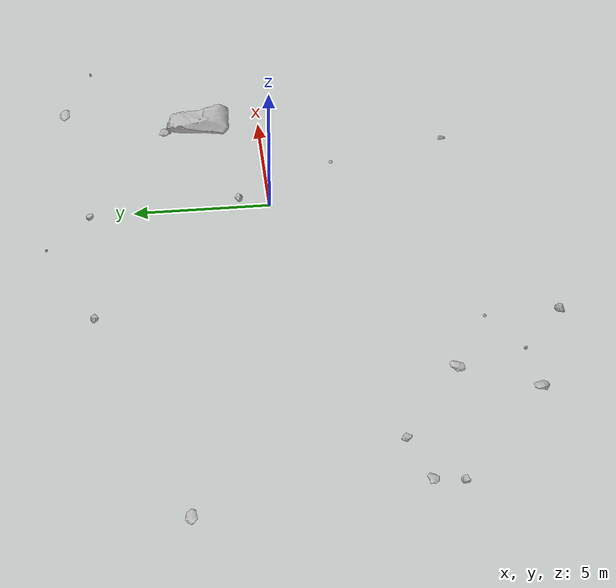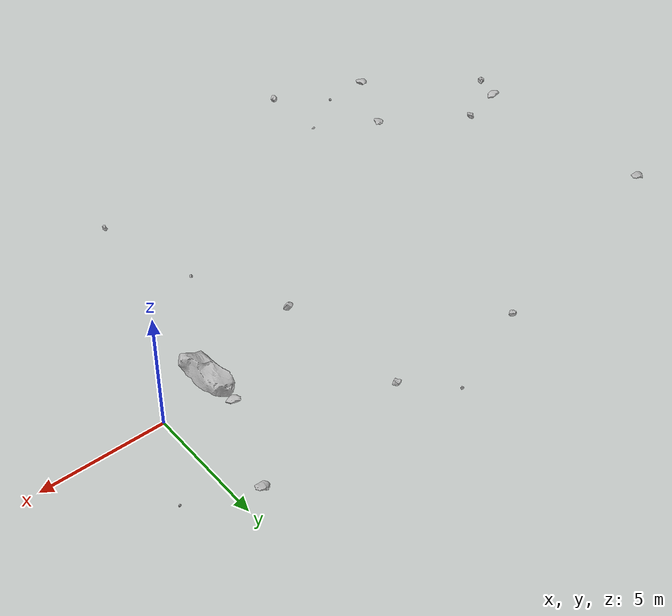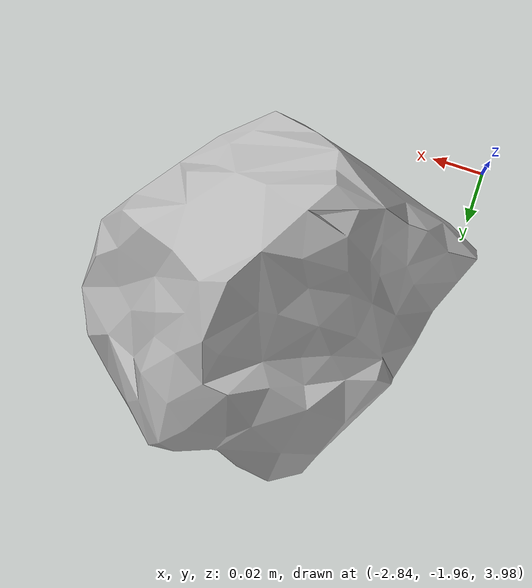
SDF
<sdf version="1.7">
 <world name="marsyard">
  <gravity>0 0 -9.81</gravity>
  <physics name="dart_physics" type="ignored">
   <max_step_size>0.003</max_step_size>
   <real_time_update_rate>333</real_time_update_rate>
   <real_time_factor>1.0</real_time_factor>
  </physics>
  <plugin filename="ignition-gazebo-physics-system" name="ignition::gazebo::systems::Physics"/>
  <plugin filename="ignition-gazebo-user-commands-system" name="ignition::gazebo::systems::UserCommands"/>
  <plugin filename="ignition-gazebo-scene-broadcaster-system" name="ignition::gazebo::systems::SceneBroadcaster"/>
  <plugin filename="ignition-gazebo-contact-system" name="ignition::gazebo::systems::Contact"/>
  <scene>
   <ambient>0.95 0.95 0.95 1</ambient>
   <background>0.70 0.70 0.70 1</background>
   <shadows>false</shadows>
  </scene>
  <light type="directional" name="sun">
   <cast_shadows>false</cast_shadows>
   <pose>0 0 30 0 0 0</pose>
   <diffuse>1 1 1 1</diffuse>
   <specular>0.15 0.15 0.15 1</specular>
   <direction>-0.35 0.1 -0.93</direction>
  </light>
  <model name="Rock_1">
   <static>true</static>
   <pose>-10.1297 6.4647 4.0000 0.0000 0.0000 -1.6967</pose>
   <link name="link">
    <visual name="visual">
     <geometry><mesh><uri>package://rock_generator/rocks_ws/rock_1/meshes/rock_1.stl</uri></mesh></geometry>
    </visual>
    <collision name="collision">
     <geometry><mesh><uri>package://rock_generator/rocks_ws/rock_1/meshes/rock_1.stl</uri></mesh></geometry>
    </collision>
   </link>
  </model>
  <model name="Rock_2">
   <static>true</static>
   <pose>-16.3348 -2.6055 4.0000 0.0000 0.0000 -3.0928</pose>
   <link name="link">
    <visual name="visual">
     <geometry><mesh><uri>package://rock_generator/rocks_ws/rock_1/meshes/rock_1.stl</uri></mesh></geometry>
    </visual>
    <collision name="collision">
     <geometry><mesh><uri>package://rock_generator/rocks_ws/rock_1/meshes/rock_1.stl</uri></mesh></geometry>
    </collision>
   </link>
  </model>
  <model name="Rock_4">
   <static>true</static>
   <pose>-18.2049 -4.0636 4.0000 0.0000 0.0000 2.4550</pose>
   <link name="link">
    <visual name="visual">
     <geometry><mesh><uri>package://rock_generator/rocks_ws/rock_1/meshes/rock_1.stl</uri></mesh></geometry>
    </visual>
    <collision name="collision">
     <geometry><mesh><uri>package://rock_generator/rocks_ws/rock_1/meshes/rock_1.stl</uri></mesh></geometry>
    </collision>
   </link>
  </model>
  <model name="Rock_5">
   <static>true</static>
   <pose>-2.7787 -1.8851 4.0000 0.0000 0.0000 -2.0797</pose>
   <link name="link">
    <visual name="visual">
     <geometry><mesh><uri>package://rock_generator/rocks_ws/rock_5/meshes/rock_5.stl</uri></mesh></geometry>
    </visual>
    <collision name="collision">
     <geometry><mesh><uri>package://rock_generator/rocks_ws/rock_5/meshes/rock_5.stl</uri></mesh></geometry>
    </collision>
   </link>
  </model>
  <model name="Rock_6">
   <static>true</static>
   <pose>-13.4057 -4.5741 4.0000 0.0000 0.0000 -2.3000</pose>
   <link name="link">
    <visual name="visual">
     <geometry><mesh><uri>package://rock_generator/rocks_ws/rock_8/meshes/rock_8.stl</uri></mesh></geometry>
    </visual>
    <collision name="collision">
     <geometry><mesh><uri>package://rock_generator/rocks_ws/rock_8/meshes/rock_8.stl</uri></mesh></geometry>
    </collision>
   </link>
  </model>
  <model name="Rock_7">
   <static>true</static>
   <pose>-18.7874 3.9419 4.0000 0.0000 0.0000 2.9008</pose>
   <link name="link">
    <visual name="visual">
     <geometry><mesh><uri>package://rock_generator/rocks_ws/rock_8/meshes/rock_8.stl</uri></mesh></geometry>
    </visual>
    <collision name="collision">
     <geometry><mesh><uri>package://rock_generator/rocks_ws/rock_8/meshes/rock_8.stl</uri></mesh></geometry>
    </collision>
   </link>
  </model>
  <model name="Rock_8">
   <static>true</static>
   <pose>-5.0715 6.4557 4.0000 0.0000 0.0000 1.2092</pose>
   <link name="link">
    <visual name="visual">
     <geometry><mesh><uri>package://rock_generator/rocks_ws/rock_1/meshes/rock_1.stl</uri></mesh></geometry>
    </visual>
    <collision name="collision">
     <geometry><mesh><uri>package://rock_generator/rocks_ws/rock_1/meshes/rock_1.stl</uri></mesh></geometry>
    </collision>
   </link>
  </model>
  <model name="Rock_9">
   <static>true</static>
   <pose>-6.5804 7.9208 4.0000 0.0000 0.0000 2.0260</pose>
   <link name="link">
    <visual name="visual">
     <geometry><mesh><uri>package://rock_generator/rocks_ws/rock_9/meshes/rock_9.stl</uri></mesh></geometry>
    </visual>
    <collision name="collision">
     <geometry><mesh><uri>package://rock_generator/rocks_ws/rock_9/meshes/rock_9.stl</uri></mesh></geometry>
    </collision>
   </link>
  </model>
  <model name="Rock_10">
   <static>true</static>
   <pose>-18.0122 -3.1448 4.0000 0.0000 0.0000 -0.1633</pose>
   <link name="link">
    <visual name="visual">
     <geometry><mesh><uri>package://rock_generator/rocks_ws/rock_8/meshes/rock_8.stl</uri></mesh></geometry>
    </visual>
    <collision name="collision">
     <geometry><mesh><uri>package://rock_generator/rocks_ws/rock_8/meshes/rock_8.stl</uri></mesh></geometry>
    </collision>
   </link>
  </model>
  <model name="Rock_11">
   <static>true</static>
   <pose>-0.5321 3.7104 4.0000 0.0000 0.0000 -0.6373</pose>
   <link name="link">
    <visual name="visual">
     <geometry><mesh><uri>package://rock_generator/rocks_ws/rock_8/meshes/rock_8.stl</uri></mesh></geometry>
    </visual>
    <collision name="collision">
     <geometry><mesh><uri>package://rock_generator/rocks_ws/rock_8/meshes/rock_8.stl</uri></mesh></geometry>
    </collision>
   </link>
  </model>
  <model name="Rock_12">
   <static>true</static>
   <pose>-0.4134 2.5468 4.0000 0.0000 0.0000 -1.3914</pose>
   <link name="link">
    <visual name="visual">
     <geometry><mesh><uri>package://rock_generator/rocks_ws/rock_4/meshes/rock_4.stl</uri></mesh></geometry>
    </visual>
    <collision name="collision">
     <geometry><mesh><uri>package://rock_generator/rocks_ws/rock_4/meshes/rock_4.stl</uri></mesh></geometry>
    </collision>
   </link>
  </model>
  <model name="Rock_13">
   <static>true</static>
   <pose>0.8729 7.2047 4.0000 0.0000 0.0000 2.8125</pose>
   <link name="link">
    <visual name="visual">
     <geometry><mesh><uri>package://rock_generator/rocks_ws/rock_8/meshes/rock_8.stl</uri></mesh></geometry>
    </visual>
    <collision name="collision">
     <geometry><mesh><uri>package://rock_generator/rocks_ws/rock_8/meshes/rock_8.stl</uri></mesh></geometry>
    </collision>
   </link>
  </model>
  <model name="Rock_14">
   <static>true</static>
   <pose>3.2577 6.2373 4.0000 0.0000 0.0000 0.4165</pose>
   <link name="link">
    <visual name="visual">
     <geometry><mesh><uri>package://rock_generator/rocks_ws/rock_9/meshes/rock_9.stl</uri></mesh></geometry>
    </visual>
    <collision name="collision">
     <geometry><mesh><uri>package://rock_generator/rocks_ws/rock_9/meshes/rock_9.stl</uri></mesh></geometry>
    </collision>
   </link>
  </model>
  <model name="Rock_15">
   <static>true</static>
   <pose>-11.0526 -8.3113 4.0000 0.0000 0.0000 0.5761</pose>
   <link name="link">
    <visual name="visual">
     <geometry><mesh><uri>package://rock_generator/rocks_ws/rock_3/meshes/rock_3.stl</uri></mesh></geometry>
    </visual>
    <collision name="collision">
     <geometry><mesh><uri>package://rock_generator/rocks_ws/rock_3/meshes/rock_3.stl</uri></mesh></geometry>
    </collision>
   </link>
  </model>
  <model name="Rock_17">
   <static>true</static>
   <pose>-4.4164 1.4795 4.0000 0.0000 0.0000 2.2501</pose>
   <link name="link">
    <visual name="visual">
     <geometry><mesh><uri>package://rock_generator/rocks_ws/rock_3/meshes/rock_3.stl</uri></mesh></geometry>
    </visual>
    <collision name="collision">
     <geometry><mesh><uri>package://rock_generator/rocks_ws/rock_3/meshes/rock_3.stl</uri></mesh></geometry>
    </collision>
   </link>
  </model>
  <model name="Rock_18">
   <static>true</static>
   <pose>-14.5151 -7.0112 4.0000 0.0000 0.0000 -1.5536</pose>
   <link name="link">
    <visual name="visual">
     <geometry><mesh><uri>package://rock_generator/rocks_ws/rock_8/meshes/rock_8.stl</uri></mesh></geometry>
    </visual>
    <collision name="collision">
     <geometry><mesh><uri>package://rock_generator/rocks_ws/rock_8/meshes/rock_8.stl</uri></mesh></geometry>
    </collision>
   </link>
  </model>
  <model name="Rock_19">
   <static>true</static>
   <pose>-12.7912 -6.8301 4.0000 0.0000 0.0000 -1.8449</pose>
   <link name="link">
    <visual name="visual">
     <geometry><mesh><uri>package://rock_generator/rocks_ws/rock_9/meshes/rock_9.stl</uri></mesh></geometry>
    </visual>
    <collision name="collision">
     <geometry><mesh><uri>package://rock_generator/rocks_ws/rock_9/meshes/rock_9.stl</uri></mesh></geometry>
    </collision>
   </link>
  </model>
  <model name="Rock_20">
   <static>true</static>
   <pose>-11.1868 -5.8181 4.0000 0.0000 0.0000 0.3752</pose>
   <link name="link">
    <visual name="visual">
     <geometry><mesh><uri>package://rock_generator/rocks_ws/rock_5/meshes/rock_5.stl</uri></mesh></geometry>
    </visual>
    <collision name="collision">
     <geometry><mesh><uri>package://rock_generator/rocks_ws/rock_5/meshes/rock_5.stl</uri></mesh></geometry>
    </collision>
   </link>
  </model>
  <model name="Rock_21">
   <static>true</static>
   <pose>-1.8143 -5.9088 4.0000 0.0000 0.0000 -1.7878</pose>
   <link name="link">
    <visual name="visual">
     <geometry><mesh><uri>package://rock_generator/rocks_ws/rock_6/meshes/rock_6.stl</uri></mesh></geometry>
    </visual>
    <collision name="collision">
     <geometry><mesh><uri>package://rock_generator/rocks_ws/rock_6/meshes/rock_6.stl</uri></mesh></geometry>
    </collision>
   </link>
  </model>
 </world>
</sdf>
